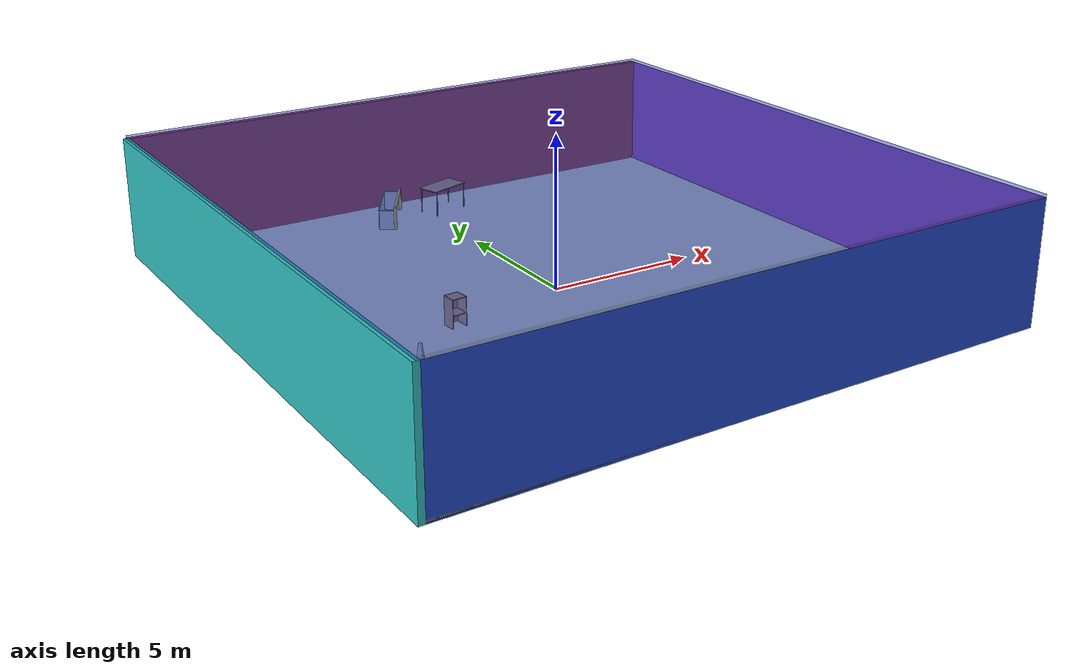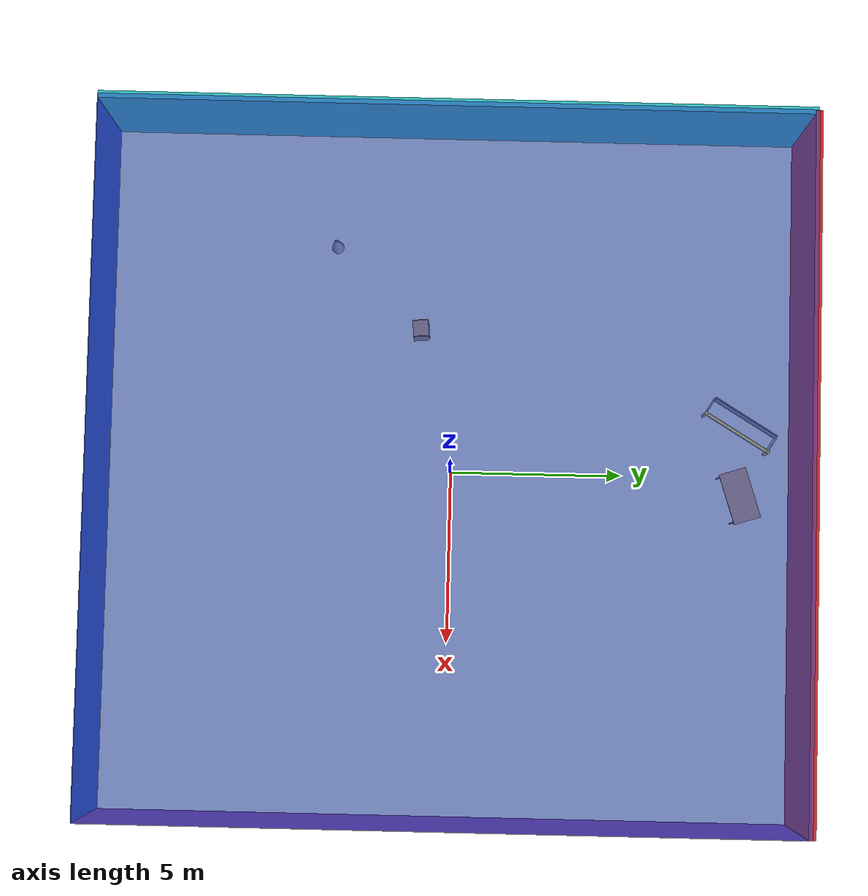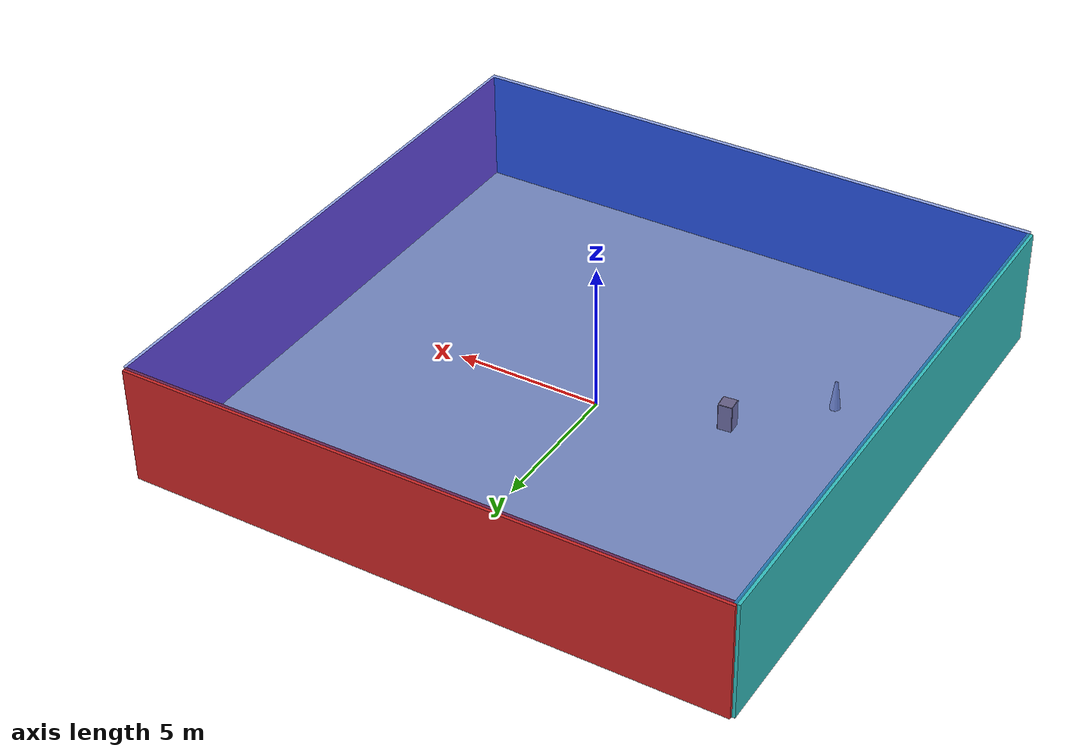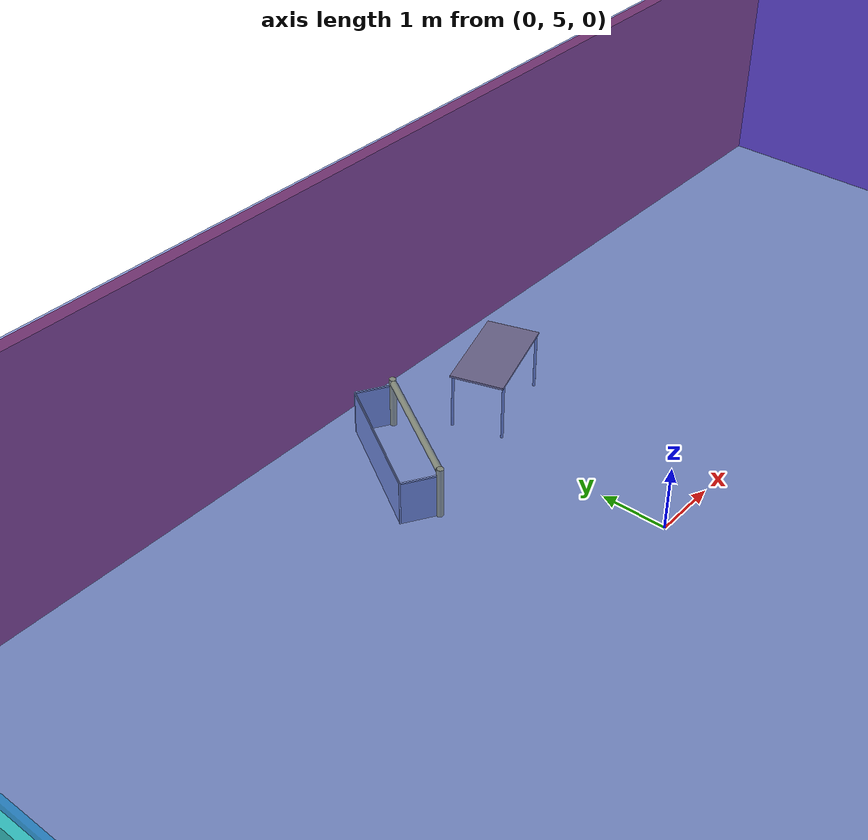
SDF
<sdf version="1.4">
 <world name="default">
  <physics type="ode">
   <max_step_size>0.001</max_step_size>
   <real_time_factor>1</real_time_factor>
   <real_time_update_rate>1000</real_time_update_rate>
   <gravity>0 0 -9.8</gravity>
  </physics>
  <scene><ambient>0.4 0.4 0.4 1</ambient><background>0.7 0.7 0.7 1</background><shadows>1</shadows></scene>
  <model name="Surrounding">
   <static>1</static>
   <link name="Ceiling">
    <collision name="Ceiling_Collision"><geometry><box><size>20 20 0.1</size></box></geometry></collision>
    <visual name="Ceiling_Visual">
     <geometry><box><size>20 20 0.1</size></box></geometry>
     <material>
      <script><uri>file://media/materials/scripts/gazebo.material</uri><name>Gazebo/BlueTransparent</name></script>
     </material>
    </visual>
    <pose>0 0 4.05 0 0 0</pose>
   </link>
   <link name="Wall_South">
    <collision name="Wall_South_Collision">
     <geometry><box><size>20 0 4</size></box></geometry>
     <pose>0 0 2 0 -0 0</pose>
    </collision>
    <visual name="Wall_South_Visual">
     <pose>0 0 2 0 -0 0</pose>
     <geometry><box><size>20 0 4</size></box></geometry>
     <material>
      <script><uri>file://media/materials/scripts/gazebo.material</uri><name>Gazebo/Blue</name></script>
     </material>
    </visual>
    <velocity_decay><linear>0</linear><angular>0</angular></velocity_decay>
    <pose>0 -10 0 0 -0 0</pose>
   </link>
   <link name="Wall_East">
    <collision name="Wall_21_Collision">
     <geometry><box><size>20 0 4</size></box></geometry>
     <pose>0 0 2 0 -0 0</pose>
    </collision>
    <visual name="Wall_21_Visual">
     <pose>0 0 2 0 -0 0</pose>
     <geometry><box><size>20 0 4</size></box></geometry>
     <material>
      <script><uri>file://media/materials/scripts/gazebo.material</uri><name>Gazebo/Purple</name></script>
     </material>
    </visual>
    <velocity_decay><linear>0</linear><angular>0</angular></velocity_decay>
    <pose>10 0 0 0 -0 1.5708</pose>
   </link>
   <link name="Wall_North">
    <collision name="Wall_22_Collision">
     <geometry><box><size>20 0.2 4</size></box></geometry>
     <pose>0 0 2 0 -0 0</pose>
    </collision>
    <visual name="Wall_22_Visual">
     <pose>0 0 2 0 -0 0</pose>
     <geometry><box><size>20 0.2 4</size></box></geometry>
     <material>
      <script><uri>file://media/materials/scripts/gazebo.material</uri><name>Gazebo/RedBright</name></script>
     </material>
    </visual>
    <velocity_decay><linear>0</linear><angular>0</angular></velocity_decay>
    <pose>0 10 0 0 -0 0</pose>
   </link>
   <link name="Wall_West">
    <collision name="Wall_23_Collision">
     <geometry><box><size>20 0.2 4</size></box></geometry>
     <pose>0 0 2 0 -0 0</pose>
    </collision>
    <visual name="Wall_23_Visual">
     <pose>0 0 2 0 -0 0</pose>
     <geometry><box><size>20 0.2 4</size></box></geometry>
     <material>
      <script>
       <uri>file://media/materials/scripts/gazebo.material</uri>
       <name>Gazebo/TurquoiseGlowOutline</name>
      </script>
     </material>
    </visual>
    <velocity_decay><linear>0</linear><angular>0</angular></velocity_decay>
    <pose>-10 0 0 0 0 -1.5708</pose>
   </link>
   <link name="Ground_link">
    <collision name="collision">
     <pose>0 0 .05 0 -0 0</pose>
     <geometry><box><size>20 20 0.1</size></box></geometry>
    </collision>
    <visual name="visual">
     <pose>0 0 .05 0 -0 0</pose>
     <geometry><box><size>20 20 0.1</size></box></geometry>
     <material>
      <script><uri>file://media/materials/scripts/gazebo.material</uri><name>Gazebo/PaintedWall</name></script>
     </material>
    </visual>
   </link>
   <static>1</static>
  </model>
  <spherical_coordinates>
   <surface_model>EARTH_WGS84</surface_model>
   <latitude_deg>0</latitude_deg>
   <longitude_deg>0</longitude_deg>
   <elevation>0</elevation>
   <heading_deg>0</heading_deg>
  </spherical_coordinates>
  <light name="lightball_0" type="diffuse">
   <diffuse>0.8 0.8 0.8 1</diffuse>
   <specular>0.2 0.2 0.2 1</specular>
   <attenuation>
    <range>100</range>
    <constant>0.7</constant>
    <linear>0.01</linear>
    <quadratic>0.001</quadratic>
   </attenuation>
   <direction>-0.5 0.1 -0.9</direction>
   <pose>0.187068308097 -2.08728720654 3.31399858581 0 0 0</pose>
  </light>
  <light name="lightball_1" type="diffuse">
   <diffuse>0.8 0.8 0.8 1</diffuse>
   <specular>0.2 0.2 0.2 1</specular>
   <attenuation>
    <range>100</range>
    <constant>0.7</constant>
    <linear>0.01</linear>
    <quadratic>0.001</quadratic>
   </attenuation>
   <direction>-0.5 0.1 -0.9</direction>
   <pose>-4.3822999992 -1.65561210381 3.60641740343 0 0 0</pose>
  </light>
  <light name="lightball_2" type="diffuse">
   <diffuse>0.8 0.8 0.8 1</diffuse>
   <specular>0.2 0.2 0.2 1</specular>
   <attenuation>
    <range>100</range>
    <constant>0.7</constant>
    <linear>0.01</linear>
    <quadratic>0.001</quadratic>
   </attenuation>
   <direction>-0.5 0.1 -0.9</direction>
   <pose>-4.4798506461 7.63766697735 2.71902962236 0 0 0</pose>
  </light>
  <light name="lightball_3" type="diffuse">
   <diffuse>0.8 0.8 0.8 1</diffuse>
   <specular>0.2 0.2 0.2 1</specular>
   <attenuation>
    <range>100</range>
    <constant>0.7</constant>
    <linear>0.01</linear>
    <quadratic>0.001</quadratic>
   </attenuation>
   <direction>-0.5 0.1 -0.9</direction>
   <pose>-3.69108459322 -9.44338540926 3.39804343119 0 0 0</pose>
  </light>
  <light name="lightball_4" type="diffuse">
   <diffuse>0.8 0.8 0.8 1</diffuse>
   <specular>0.2 0.2 0.2 1</specular>
   <attenuation>
    <range>100</range>
    <constant>0.7</constant>
    <linear>0.01</linear>
    <quadratic>0.001</quadratic>
   </attenuation>
   <direction>-0.5 0.1 -0.9</direction>
   <pose>5.09789267917 4.01266896607 2.37943527739 0 0 0</pose>
  </light>
  <light name="lightball_5" type="diffuse">
   <diffuse>0.8 0.8 0.8 1</diffuse>
   <specular>0.2 0.2 0.2 1</specular>
   <attenuation>
    <range>100</range>
    <constant>0.7</constant>
    <linear>0.01</linear>
    <quadratic>0.001</quadratic>
   </attenuation>
   <direction>-0.5 0.1 -0.9</direction>
   <pose>-4.70774552336 -7.41938843591 3.29221704914 0 0 0</pose>
  </light>
  <light name="lightball_6" type="diffuse">
   <diffuse>0.8 0.8 0.8 1</diffuse>
   <specular>0.2 0.2 0.2 1</specular>
   <attenuation>
    <range>100</range>
    <constant>0.7</constant>
    <linear>0.01</linear>
    <quadratic>0.001</quadratic>
   </attenuation>
   <direction>-0.5 0.1 -0.9</direction>
   <pose>-9.66767037126 -6.33178374336 3.1476537944 0 0 0</pose>
  </light>
  <include>
   <uri>model://construction_cone</uri>
   <pose>-6.5679796518 -3.46957385306 0 0 0 1.39998888739</pose>
  </include>
  <include><uri>model://cabinet</uri><pose>-4.10562540768 -0.955506660882 0 0 0 1.65640585063</pose></include>
  <include>
   <uri>model://robocup_3Dsim_goal</uri>
   <pose>-1.28260868146 8.28202393119 0 0 0 2.59639765899</pose>
  </include>
  <include><uri>model://table</uri><pose>0.558887902391 8.36179212411 0 0 0 0.308713759986</pose></include>
 </world>
</sdf>

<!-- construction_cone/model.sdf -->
<sdf version="1.5">
  <model name="Construction Cone">
    <link name="link">
      <collision name="collision">
        <geometry>
          <mesh>
            <scale>10 10 10</scale>
            <uri>file://isr-testbed/construction_cone/meshes/construction_cone.dae</uri>
          </mesh>
        </geometry>
      </collision>
      <visual name="visual">
        <geometry>
          <mesh>
            <scale>10 10 10</scale>
            <uri>file://isr-testbed/construction_cone/meshes/construction_cone.dae</uri>
          </mesh>
        </geometry>
      </visual>
    </link>
  </model>
</sdf>

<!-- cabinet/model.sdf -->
<sdf version="1.5">
  <model name="cabinet">
    <static>true</static>
    <link name="cabinet_bottom_plate">
      <inertial>
        <pose>0 0 -1 0 0 0</pose>
        <inertia>
          <ixx>2.050000</ixx>
          <ixy>0</ixy>
          <ixz>0</ixz>
          <iyy>2.050000</iyy>
          <iyz>0</iyz>
          <izz>2.050000</izz>
        </inertia>
        <mass>25.000000</mass>
      </inertial>
      <collision name="cabinet_bottom_plate_geom">
        <pose>0 0 0.010000 0 0 0</pose>
        <geometry>
          <box>
            <size>0.450000 0.450000 0.020000</size>
          </box>
        </geometry>
      </collision>
      <visual name="cabinet_bottom_plate_geom_visual">
        <pose>0 0 0.010000 0 0 0</pose>
        <geometry>
          <box>
            <size>0.450000 0.450000 0.020000</size>
          </box>
        </geometry>
        <material>
          <script>
            <uri>model://media/materials/scripts/gazebo.material</uri>
            <name>Gazebo/Wood</name>
          </script>
        </material>
      </visual>
      <collision name="cabinet_bottom_plate_geom_cabinet_back_plate">
        <pose>0.235000 0 0.510000 0 0 0</pose>
        <geometry>
          <box>
            <size>0.020000 0.450000 1.020000</size>
          </box>
        </geometry>
      </collision>
      <visual name="cabinet_bottom_plate_geom_cabinet_back_plate_visual">
        <pose>0.235000 0 0.510000 0 0 0</pose>
        <geometry>
          <box>
            <size>0.020000 0.450000 1.020000</size>
          </box>
        </geometry>
        <material>
          <script>
            <uri>model://media/materials/scripts/gazebo.material</uri>
            <name>Gazebo/Wood</name>
          </script>
        </material>
      </visual>
      <collision name="cabinet_bottom_plate_geom_cabinet_left_plate">
        <pose>0 0.235000 0.510000 0 0 0</pose>
        <geometry>
          <box>
            <size>0.450000 0.020000 1.020000</size>
          </box>
        </geometry>
      </collision>
      <visual name="cabinet_bottom_plate_geom_cabinet_left_plate_visual">
        <pose>0 0.235000 0.510000 0 0 0</pose>
        <geometry>
          <box>
            <size>0.450000 0.020000 1.020000</size>
          </box>
        </geometry>
        <material>
          <script>
            <uri>model://media/materials/scripts/gazebo.material</uri>
            <name>Gazebo/Wood</name>
          </script>
        </material>
      </visual>
      <collision name="cabinet_bottom_plate_geom_cabinet_middle_plate">
        <pose>0 0 0.510000 0 0 0</pose>
        <geometry>
          <box>
            <size>0.450000 0.450000 0.020000</size>
          </box>
        </geometry>
      </collision>
      <visual name="cabinet_bottom_plate_geom_cabinet_middle_plate_visual">
        <pose>0 0 0.510000 0 0 0</pose>
        <geometry>
          <box>
            <size>0.450000 0.450000 0.020000</size>
          </box>
        </geometry>
        <material>
          <script>
            <uri>model://media/materials/scripts/gazebo.material</uri>
            <name>Gazebo/Wood</name>
          </script>
        </material>
      </visual>
      <collision name="cabinet_bottom_plate_geom_cabinet_right_plate">
        <pose>0 -0.235000 0.510000 0 0 0</pose>
        <geometry>
          <box>
            <size>0.450000 0.020000 1.020000</size>
          </box>
        </geometry>
      </collision>
      <visual name="cabinet_bottom_plate_geom_cabinet_right_plate_visual">
        <pose>0 -0.235000 0.510000 0 0 0</pose>
        <geometry>
          <box>
            <size>0.450000 0.020000 1.020000</size>
          </box>
        </geometry>
        <material>
          <script>
            <uri>model://media/materials/scripts/gazebo.material</uri>
            <name>Gazebo/Wood</name>
          </script>
        </material>
      </visual>
      <collision name="cabinet_bottom_plate_geom_cabinet_top_plate">
        <pose>0 0 1.010000 0 0 0</pose>
        <geometry>
          <box>
            <size>0.450000 0.450000 0.020000</size>
          </box>
        </geometry>
      </collision>
      <visual name="cabinet_bottom_plate_geom_cabinet_top_plate_visual">
        <pose>0 0 1.010000 0 0 0</pose>
        <geometry>
          <box>
            <size>0.450000 0.450000 0.020000</size>
          </box>
        </geometry>
        <material>
          <script>
            <uri>model://media/materials/scripts/gazebo.material</uri>
            <name>Gazebo/Wood</name>
          </script>
        </material>
      </visual>
    </link>
  </model>
</sdf>

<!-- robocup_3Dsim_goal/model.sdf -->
<sdf version="1.5">
  <model name="robocup_3d_goal">
    <static>true</static>
    <link name="left_post">
      <pose>0 1.05 0.45 0 0 0</pose>
      <collision name="collision">
        <geometry>
          <cylinder>
            <radius>0.05</radius>
            <length>0.9</length>
          </cylinder>
        </geometry>
      </collision>
      <visual name="visual">
        <geometry>
          <cylinder>
            <radius>0.05</radius>
            <length>0.9</length>
          </cylinder>
        </geometry>
        <material>
          <script>
            <uri>file://media/materials/scripts/gazebo.material</uri>
            <name>Gazebo/ZincYellow</name>
          </script>
        </material>
      </visual>
    </link>
    <link name="left_support_horiz_lower">
      <pose>0.30 1.05 0.01 0 0 0</pose>
      <collision name="collision">
        <geometry>
          <box>
            <size>0.50 0.02 0.02</size>
          </box>
        </geometry>
      </collision>
      <visual name="visual">
        <geometry>
          <box>
            <size>0.50 0.02 0.02</size>
          </box>
        </geometry>
        <material>
          <script>
            <uri>file://media/materials/scripts/gazebo.material</uri>
            <name>Gazebo/White</name>
          </script>
        </material>
      </visual>
    </link>
    <link name="left_support_horiz_upper">
      <pose>0.30 1.05 0.79 0 0 0</pose>
      <collision name="collision">
        <geometry>
          <box>
            <size>0.50 0.02 0.02</size>
          </box>
        </geometry>
      </collision>
      <visual name="visual">
        <geometry>
          <box>
            <size>0.50 0.02 0.02</size>
          </box>
        </geometry>
        <material>
          <script>
            <uri>file://media/materials/scripts/gazebo.material</uri>
            <name>Gazebo/White</name>
          </script>
        </material>
      </visual>
    </link>
    <link name="left_support_vertical">
      <pose>0.56 1.05 0.4 0 1.5708 0</pose>
      <collision name="collision">
        <geometry>
          <box>
            <size>0.80 0.02 0.02</size>
          </box>
        </geometry>
      </collision>
      <visual name="visual">
        <geometry>
          <box>
            <size>0.80 0.02 0.02</size>
          </box>
        </geometry>
        <material>
          <script>
            <uri>file://media/materials/scripts/gazebo.material</uri>
            <name>Gazebo/White</name>
          </script>
        </material>
      </visual>
    </link>
    <link name="right_support_horiz_lower">
      <pose>0.30 -1.05 0.01 0 0 0</pose>
      <collision name="collision">
        <geometry>
          <box>
            <size>0.50 0.02 0.02</size>
          </box>
        </geometry>
      </collision>
      <visual name="visual">
        <geometry>
          <box>
            <size>0.50 0.02 0.02</size>
          </box>
        </geometry>
        <material>
          <script>
            <uri>file://media/materials/scripts/gazebo.material</uri>
            <name>Gazebo/White</name>
          </script>
        </material>
      </visual>
    </link>
    <link name="right_support_horiz_upper">
      <pose>0.30 -1.05 0.79 0 0 0</pose>
      <collision name="collision">
        <geometry>
          <box>
            <size>0.50 0.02 0.02</size>
          </box>
        </geometry>
      </collision>
      <visual name="visual">
        <geometry>
          <box>
            <size>0.50 0.02 0.02</size>
          </box>
        </geometry>
        <material>
          <script>
            <uri>file://media/materials/scripts/gazebo.material</uri>
            <name>Gazebo/White</name>
          </script>
        </material>
      </visual>
    </link>
    <link name="right_support_vertical">
      <pose>0.56 -1.05 0.4 0 1.5708 0</pose>
      <collision name="collision">
        <geometry>
          <box>
            <size>0.80 0.02 0.02</size>
          </box>
        </geometry>
      </collision>
      <visual name="visual">
        <geometry>
          <box>
            <size>0.80 0.02 0.02</size>
          </box>
        </geometry>
        <material>
          <script>
            <uri>file://media/materials/scripts/gazebo.material</uri>
            <name>Gazebo/White</name>
          </script>
        </material>
      </visual>
    </link>
    <link name="center_support_horiz_lower">
      <pose>0.56 0 0.01 0 1.5708 0</pose>
      <collision name="collision">
        <geometry>
          <box>
            <size>0.02 2.08 0.02</size>
          </box>
        </geometry>
      </collision>
      <visual name="visual">
        <geometry>
          <box>
            <size>0.02 2.08 0.02</size>
          </box>
        </geometry>
        <material>
          <script>
            <uri>file://media/materials/scripts/gazebo.material</uri>
            <name>Gazebo/White</name>
          </script>
        </material>
      </visual>
    </link>
    <link name="center_support_horiz_upper">
      <pose>0.56 0 0.79 0 1.5708 0</pose>
      <collision name="collision">
        <geometry>
          <box>
            <size>0.02 2.08 0.02</size>
          </box>
        </geometry>
      </collision>
      <visual name="visual">
        <geometry>
          <box>
            <size>0.02 2.08 0.02</size>
          </box>
        </geometry>
        <material>
          <script>
            <uri>file://media/materials/scripts/gazebo.material</uri>
            <name>Gazebo/White</name>
          </script>
        </material>
      </visual>
    </link>
    <link name="right_post">
      <pose>0 -1.05 0.45 0 0 0</pose>
      <collision name="collision">
        <geometry>
          <cylinder>
            <radius>0.05</radius>
            <length>0.9</length>
          </cylinder>
        </geometry>
      </collision>
      <visual name="visual">
        <geometry>
          <cylinder>
            <radius>0.05</radius>
            <length>0.9</length>
          </cylinder>
        </geometry>
        <material>
          <script>
            <uri>file://media/materials/scripts/gazebo.material</uri>
            <name>Gazebo/ZincYellow</name>
          </script>
        </material>
      </visual>
    </link>
    <link name="crossbar">
      <pose>0 0 0.85 1.57 1.57 0</pose>
      <collision name="collision">
        <geometry>
          <cylinder>
            <radius>0.05</radius>
            <length>2.0</length>
          </cylinder>
        </geometry>
      </collision>
      <visual name="visual">
        <geometry>
          <cylinder>
            <radius>0.05</radius>
            <length>2.0</length>
          </cylinder>
        </geometry>
        <material>
          <script>
            <uri>file://media/materials/scripts/gazebo.material</uri>
            <name>Gazebo/ZincYellow</name>
          </script>
        </material>
      </visual>
    </link>
    <link name="center_net">
      <pose>0.56 0 0.40 0 0 0</pose>
      <collision name="collision">
        <geometry>
          <box>
            <size>0.01 2.1 0.80</size>
          </box>
        </geometry>
      </collision>
      <visual name="visual">
        <geometry>
          <box>
            <size>0.01 2.1 0.80</size>
          </box>
        </geometry>
        <material>
          <script>
            <uri>model://../model_source/models/robocup09_spl_field/materials/scripts/</uri>
            <uri>model://../model_source/models/robocup09_spl_field/materials/textures/</uri>
            <name>RoboCup/Net</name>
          </script>
        </material>
      </visual>
    </link>
    <link name="left_net">
      <pose>0.30 1.05 0.40 0 0 0</pose>
      <collision name="collision">
        <geometry>
          <box>
            <size>0.50 0.01 0.76</size>
          </box>
        </geometry>
      </collision>
      <visual name="visual">
        <geometry>
          <box>
            <size>0.50 0.01 0.76</size>
          </box>
        </geometry>
        <material>
          <script>
            <uri>model://../model_source/models/robocup09_spl_field/materials/scripts/</uri>
            <uri>model://../model_source/models/robocup09_spl_field/materials/textures/</uri>
            <name>RoboCup/Net</name>
          </script>
        </material>
      </visual>
    </link>
    <link name="right_net">
      <pose>0.30 -1.05 0.40 0 0 0</pose>
      <collision name="collision">
        <geometry>
          <box>
            <size>0.50 0.01 0.76</size>
          </box>
        </geometry>
      </collision>
      <visual name="visual">
        <geometry>
          <box>
            <size>0.50 0.01 0.76</size>
          </box>
        </geometry>
        <material>
          <script>
            <uri>model://../model_source/models/robocup09_spl_field/materials/scripts/</uri>
            <uri>model://../model_source/models/robocup09_spl_field/materials/textures/</uri>
            <name>RoboCup/Net</name>
          </script>
        </material>
      </visual>
    </link>
  </model>
</sdf>

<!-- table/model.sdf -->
<sdf version="1.5">
  <model name="table">
    <static>true</static>
    <link name="link">
      <collision name="surface">
        <pose>0 0 1.0 0 0 0</pose>
        <geometry>
          <box>
            <size>1.5 0.8 0.03</size>
          </box>
        </geometry>
        <surface>
          <friction>
            <ode>
              <mu>0.6</mu>
              <mu2>0.6</mu2>
            </ode>
          </friction>
        </surface>
      </collision>
      <visual name="visual1">
        <pose>0 0 1.0 0 0 0</pose>
        <geometry>
          <box>
            <size>1.5 0.8 0.03</size>
          </box>
        </geometry>
        <material>
          <script>
            <uri>model://media/materials/scripts/gazebo.material</uri>
            <name>Gazebo/Wood</name>
          </script>
        </material>
      </visual>
      <collision name="front_left_leg">
        <pose>0.68 0.38 0.5 0 0 0</pose>
        <geometry>
          <cylinder>
            <radius>0.02</radius>
            <length>1.0</length>
          </cylinder>
        </geometry>
      </collision>
      <visual name="front_left_leg">
        <pose>0.68 0.38 0.5 0 0 0</pose>
        <geometry>
          <cylinder>
            <radius>0.02</radius>
            <length>1.0</length>
          </cylinder>
        </geometry>
        <material>
          <script>
            <uri>model://media/materials/scripts/gazebo.material</uri>
            <name>Gazebo/Grey</name>
          </script>
        </material>
      </visual>
      <collision name="front_right_leg">
        <pose>0.68 -0.38 0.5 0 0 0</pose>
        <geometry>
          <cylinder>
            <radius>0.02</radius>
            <length>1.0</length>
          </cylinder>
        </geometry>
      </collision>
      <visual name="front_right_leg">
        <pose>0.68 -0.38 0.5 0 0 0</pose>
        <geometry>
          <cylinder>
            <radius>0.02</radius>
            <length>1.0</length>
          </cylinder>
        </geometry>
        <material>
          <script>
            <uri>model://media/materials/scripts/gazebo.material</uri>
            <name>Gazebo/Grey</name>
          </script>
        </material>
      </visual>
      <collision name="back_right_leg">
        <pose>-0.68 -0.38 0.5 0 0 0</pose>
        <geometry>
          <cylinder>
            <radius>0.02</radius>
            <length>1.0</length>
          </cylinder>
        </geometry>
      </collision>
      <visual name="back_right_leg">
        <pose>-0.68 -0.38 0.5 0 0 0</pose>
        <geometry>
          <cylinder>
            <radius>0.02</radius>
            <length>1.0</length>
          </cylinder>
        </geometry>
        <material>
          <script>
            <uri>model://media/materials/scripts/gazebo.material</uri>
            <name>Gazebo/Grey</name>
          </script>
        </material>
      </visual>
      <collision name="back_left_leg">
        <pose>-0.68 0.38 0.5 0 0 0</pose>
        <geometry>
          <cylinder>
            <radius>0.02</radius>
            <length>1.0</length>
          </cylinder>
        </geometry>
      </collision>
      <visual name="back_left_leg">
        <pose>-0.68 0.38 0.5 0 0 0</pose>
        <geometry>
          <cylinder>
            <radius>0.02</radius>
            <length>1.0</length>
          </cylinder>
        </geometry>
        <material>
          <script>
            <uri>model://media/materials/scripts/gazebo.material</uri>
            <name>Gazebo/Grey</name>
          </script>
        </material>
      </visual>
    </link>
  </model>
</sdf>
